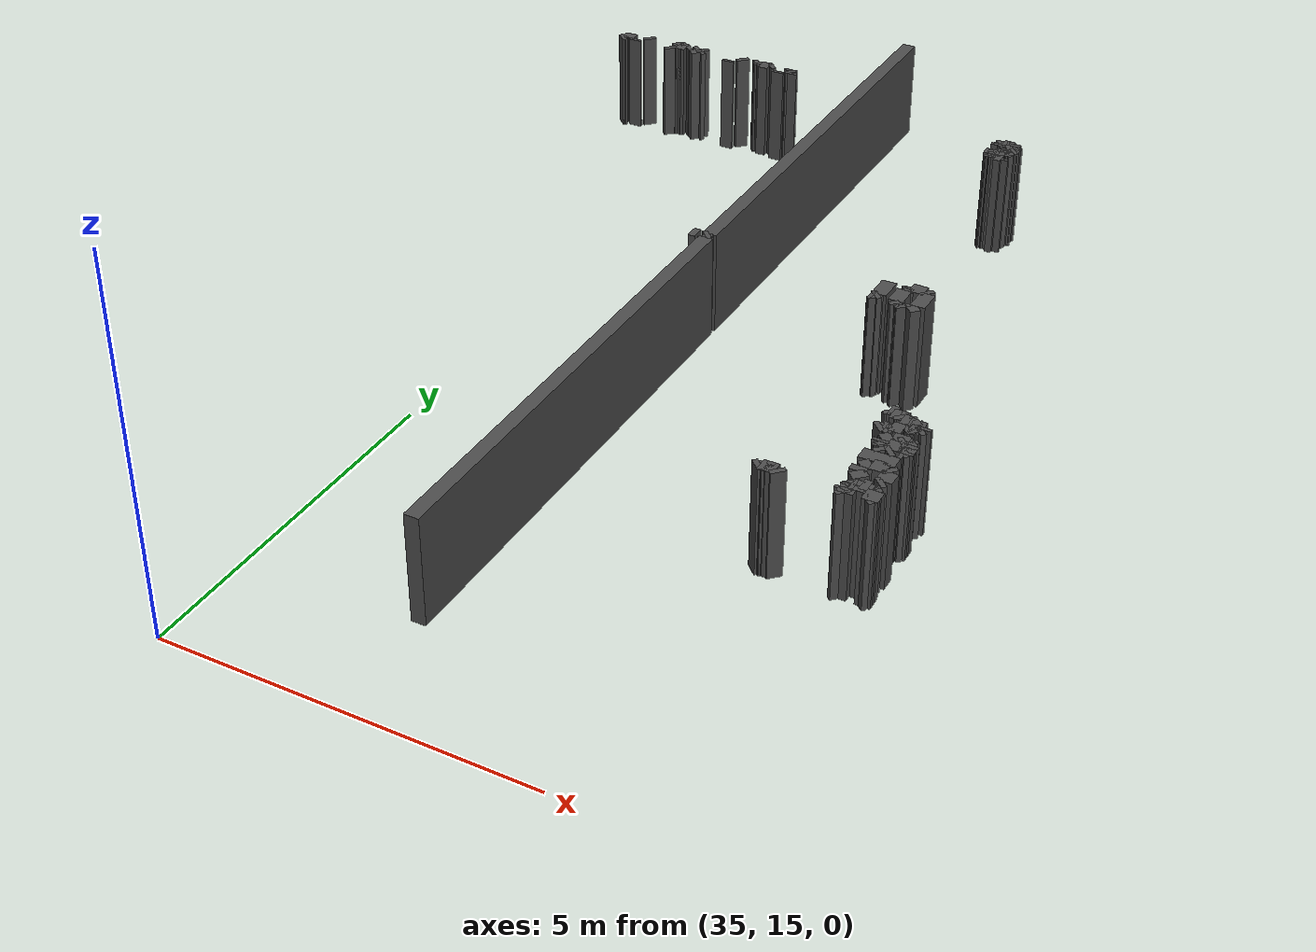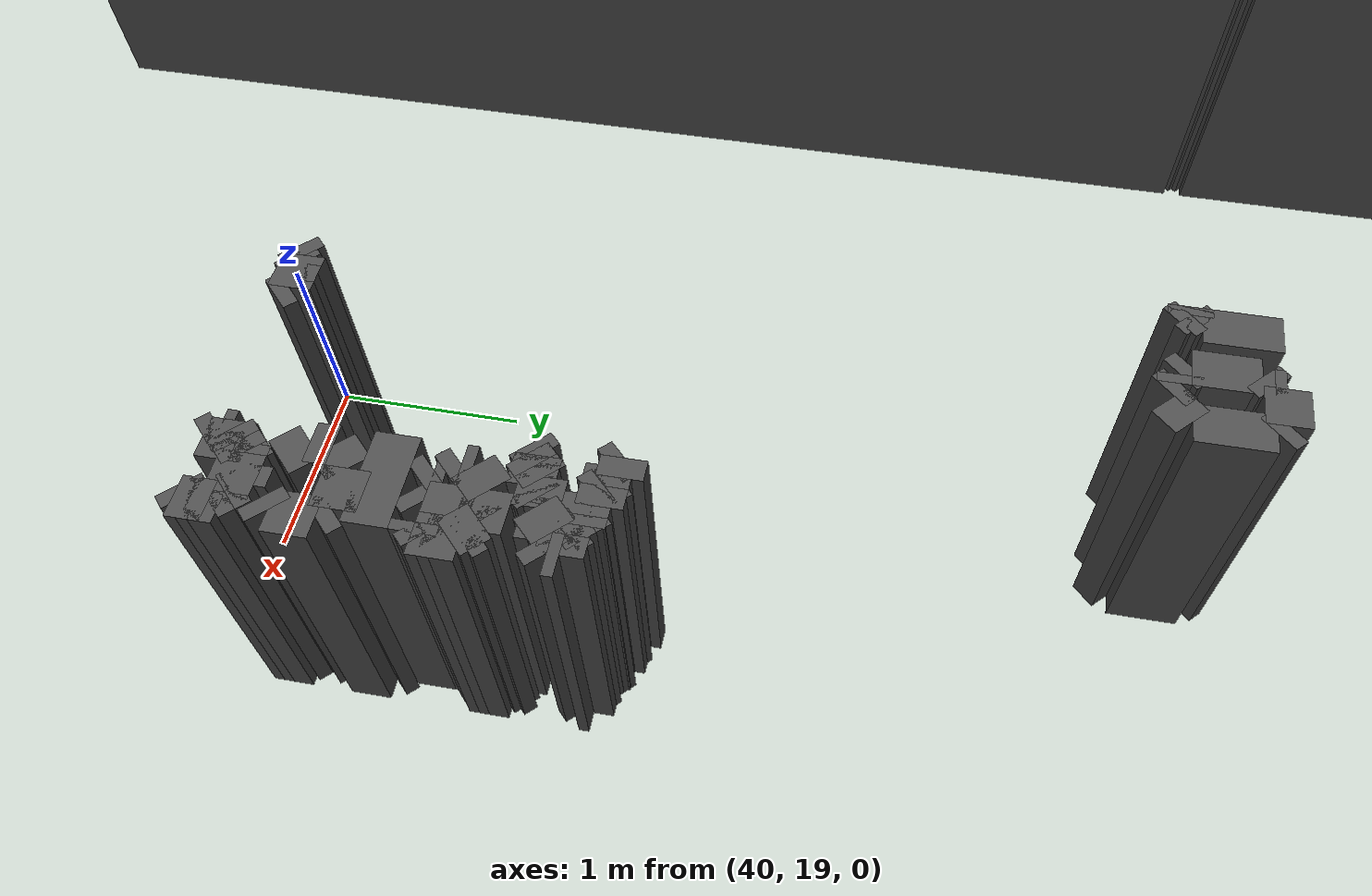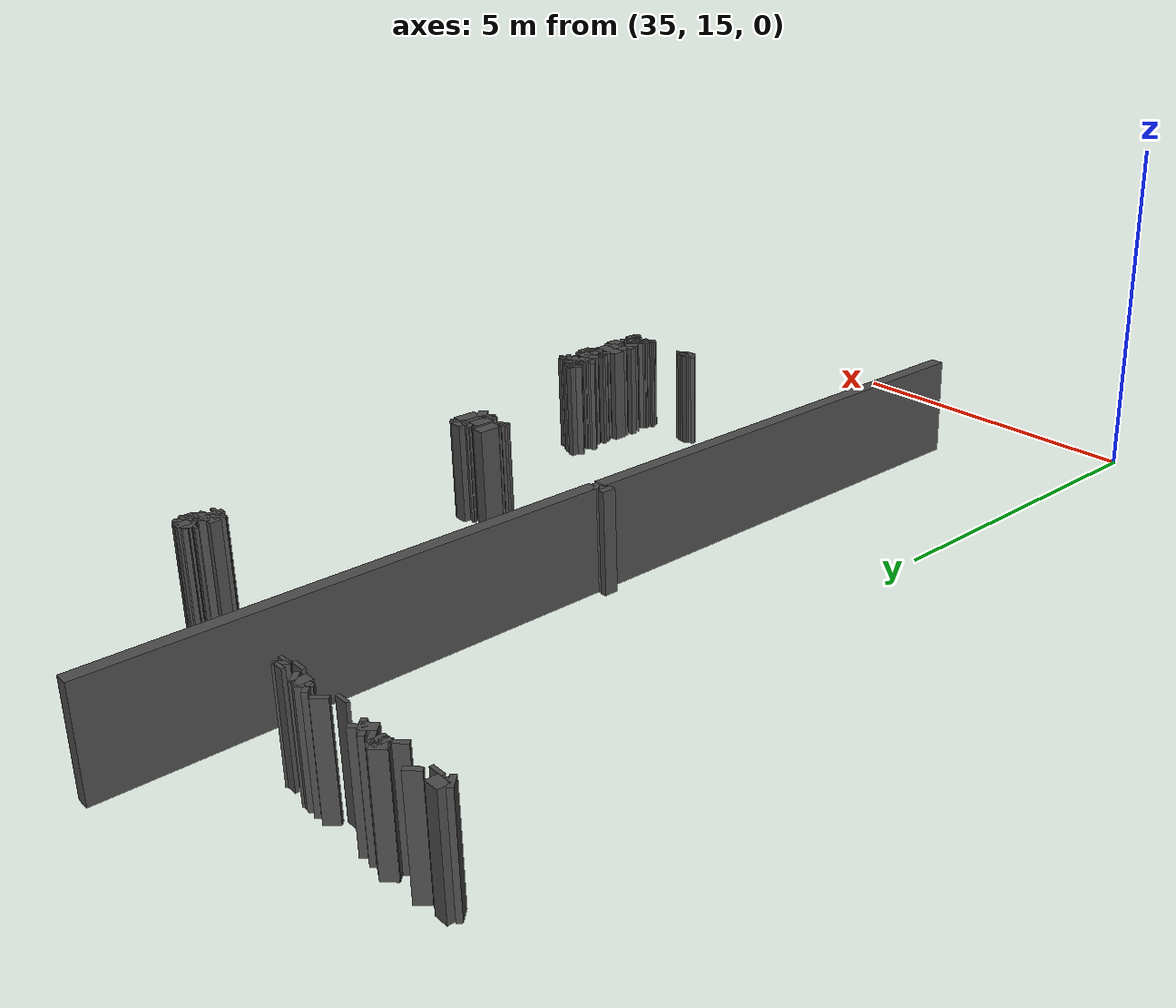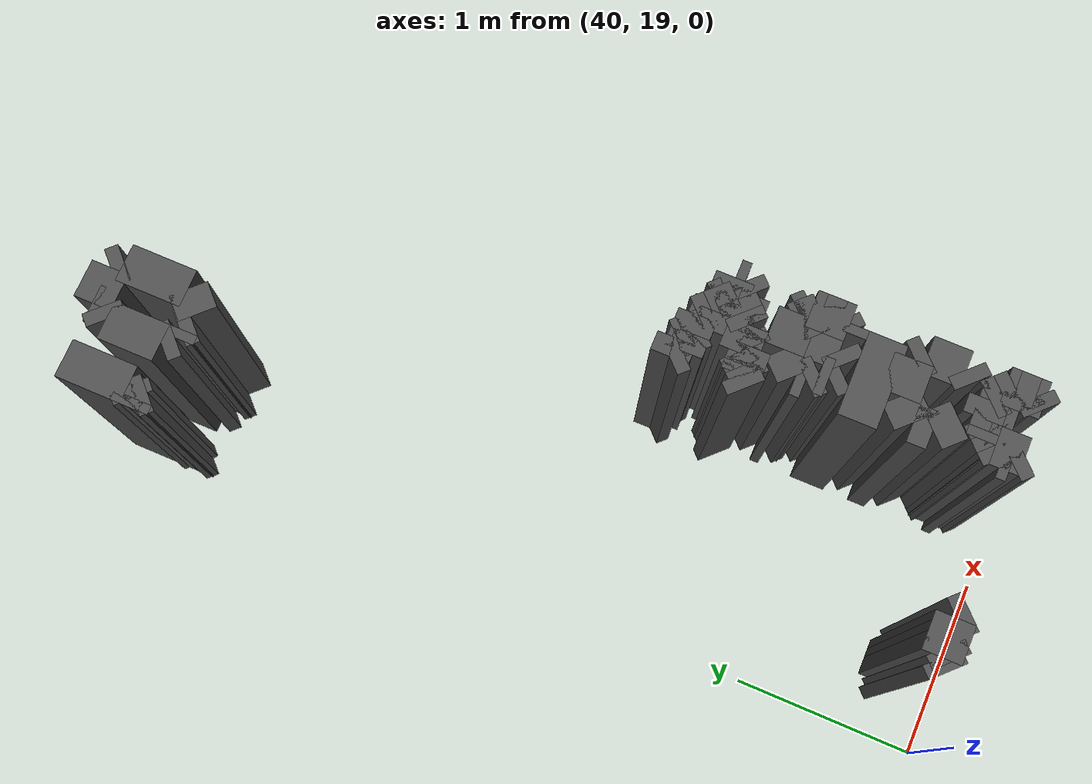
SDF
<sdf version="1.9">
 <model name="generated_walls">
  <static>true</static>
  <link name="wall_58_0">
   <pose>35.325 28.875 0.75 0 0 2.356</pose>
   <collision name="collision"><geometry><box><size>0.071 0.2 1.5</size></box></geometry></collision>
   <visual name="visual">
    <geometry><box><size>0.071 0.2 1.5</size></box></geometry>
    <material><ambient>0.3 0.3 0.3 1</ambient></material>
   </visual>
  </link>
  <link name="wall_58_14">
   <pose>35.825 28.875 0.75 0 0 -2.356</pose>
   <collision name="collision"><geometry><box><size>0.071 0.2 1.5</size></box></geometry></collision>
   <visual name="visual">
    <geometry><box><size>0.071 0.2 1.5</size></box></geometry>
    <material><ambient>0.3 0.3 0.3 1</ambient></material>
   </visual>
  </link>
  <link name="wall_58_15">
   <pose>35.725 28.850 0.75 0 0 3.142</pose>
   <collision name="collision"><geometry><box><size>0.150 0.2 1.5</size></box></geometry></collision>
   <visual name="visual">
    <geometry><box><size>0.150 0.2 1.5</size></box></geometry>
    <material><ambient>0.3 0.3 0.3 1</ambient></material>
   </visual>
  </link>
  <link name="wall_58_16">
   <pose>35.625 28.875 0.75 0 0 2.356</pose>
   <collision name="collision"><geometry><box><size>0.071 0.2 1.5</size></box></geometry></collision>
   <visual name="visual">
    <geometry><box><size>0.071 0.2 1.5</size></box></geometry>
    <material><ambient>0.3 0.3 0.3 1</ambient></material>
   </visual>
  </link>
  <link name="wall_58_17">
   <pose>35.575 28.875 0.75 0 0 -2.356</pose>
   <collision name="collision"><geometry><box><size>0.071 0.2 1.5</size></box></geometry></collision>
   <visual name="visual">
    <geometry><box><size>0.071 0.2 1.5</size></box></geometry>
    <material><ambient>0.3 0.3 0.3 1</ambient></material>
   </visual>
  </link>
  <link name="wall_60_0">
   <pose>33.675 28.875 0.75 0 0 2.356</pose>
   <collision name="collision"><geometry><box><size>0.071 0.2 1.5</size></box></geometry></collision>
   <visual name="visual">
    <geometry><box><size>0.071 0.2 1.5</size></box></geometry>
    <material><ambient>0.3 0.3 0.3 1</ambient></material>
   </visual>
  </link>
  <link name="wall_62_0">
   <pose>36.200 28.775 0.75 0 0 1.571</pose>
   <collision name="collision"><geometry><box><size>0.050 0.2 1.5</size></box></geometry></collision>
   <visual name="visual">
    <geometry><box><size>0.050 0.2 1.5</size></box></geometry>
    <material><ambient>0.3 0.3 0.3 1</ambient></material>
   </visual>
  </link>
  <link name="wall_62_1">
   <pose>36.175 28.825 0.75 0 0 2.356</pose>
   <collision name="collision"><geometry><box><size>0.071 0.2 1.5</size></box></geometry></collision>
   <visual name="visual">
    <geometry><box><size>0.071 0.2 1.5</size></box></geometry>
    <material><ambient>0.3 0.3 0.3 1</ambient></material>
   </visual>
  </link>
  <link name="wall_62_2">
   <pose>36.150 28.875 0.75 0 0 1.571</pose>
   <collision name="collision"><geometry><box><size>0.050 0.2 1.5</size></box></geometry></collision>
   <visual name="visual">
    <geometry><box><size>0.050 0.2 1.5</size></box></geometry>
    <material><ambient>0.3 0.3 0.3 1</ambient></material>
   </visual>
  </link>
  <link name="wall_63_0">
   <pose>34.550 28.800 0.75 0 0 2.356</pose>
   <collision name="collision"><geometry><box><size>0.141 0.2 1.5</size></box></geometry></collision>
   <visual name="visual">
    <geometry><box><size>0.141 0.2 1.5</size></box></geometry>
    <material><ambient>0.3 0.3 0.3 1</ambient></material>
   </visual>
  </link>
  <link name="wall_63_1">
   <pose>34.525 28.875 0.75 0 0 0.785</pose>
   <collision name="collision"><geometry><box><size>0.071 0.2 1.5</size></box></geometry></collision>
   <visual name="visual">
    <geometry><box><size>0.071 0.2 1.5</size></box></geometry>
    <material><ambient>0.3 0.3 0.3 1</ambient></material>
   </visual>
  </link>
  <link name="wall_63_7">
   <pose>34.625 28.875 0.75 0 0 -0.785</pose>
   <collision name="collision"><geometry><box><size>0.071 0.2 1.5</size></box></geometry></collision>
   <visual name="visual">
    <geometry><box><size>0.071 0.2 1.5</size></box></geometry>
    <material><ambient>0.3 0.3 0.3 1</ambient></material>
   </visual>
  </link>
  <link name="wall_63_8">
   <pose>34.625 28.825 0.75 0 0 -2.356</pose>
   <collision name="collision"><geometry><box><size>0.071 0.2 1.5</size></box></geometry></collision>
   <visual name="visual">
    <geometry><box><size>0.071 0.2 1.5</size></box></geometry>
    <material><ambient>0.3 0.3 0.3 1</ambient></material>
   </visual>
  </link>
  <link name="wall_64_0">
   <pose>36.000 28.725 0.75 0 0 1.571</pose>
   <collision name="collision"><geometry><box><size>0.050 0.2 1.5</size></box></geometry></collision>
   <visual name="visual">
    <geometry><box><size>0.050 0.2 1.5</size></box></geometry>
    <material><ambient>0.3 0.3 0.3 1</ambient></material>
   </visual>
  </link>
  <link name="wall_65_0">
   <pose>35.150 28.725 0.75 0 0 1.571</pose>
   <collision name="collision"><geometry><box><size>0.050 0.2 1.5</size></box></geometry></collision>
   <visual name="visual">
    <geometry><box><size>0.050 0.2 1.5</size></box></geometry>
    <material><ambient>0.3 0.3 0.3 1</ambient></material>
   </visual>
  </link>
  <link name="wall_67_0">
   <pose>34.125 28.725 0.75 0 0 2.356</pose>
   <collision name="collision"><geometry><box><size>0.071 0.2 1.5</size></box></geometry></collision>
   <visual name="visual">
    <geometry><box><size>0.071 0.2 1.5</size></box></geometry>
    <material><ambient>0.3 0.3 0.3 1</ambient></material>
   </visual>
  </link>
  <link name="wall_67_4">
   <pose>34.200 28.900 0.75 0 0 -0.785</pose>
   <collision name="collision"><geometry><box><size>0.141 0.2 1.5</size></box></geometry></collision>
   <visual name="visual">
    <geometry><box><size>0.141 0.2 1.5</size></box></geometry>
    <material><ambient>0.3 0.3 0.3 1</ambient></material>
   </visual>
  </link>
  <link name="wall_67_5">
   <pose>34.275 28.850 0.75 0 0 0.000</pose>
   <collision name="collision"><geometry><box><size>0.050 0.2 1.5</size></box></geometry></collision>
   <visual name="visual">
    <geometry><box><size>0.050 0.2 1.5</size></box></geometry>
    <material><ambient>0.3 0.3 0.3 1</ambient></material>
   </visual>
  </link>
  <link name="wall_67_9">
   <pose>34.375 28.875 0.75 0 0 -2.356</pose>
   <collision name="collision"><geometry><box><size>0.071 0.2 1.5</size></box></geometry></collision>
   <visual name="visual">
    <geometry><box><size>0.071 0.2 1.5</size></box></geometry>
    <material><ambient>0.3 0.3 0.3 1</ambient></material>
   </visual>
  </link>
  <link name="wall_67_10">
   <pose>34.275 28.850 0.75 0 0 3.142</pose>
   <collision name="collision"><geometry><box><size>0.150 0.2 1.5</size></box></geometry></collision>
   <visual name="visual">
    <geometry><box><size>0.150 0.2 1.5</size></box></geometry>
    <material><ambient>0.3 0.3 0.3 1</ambient></material>
   </visual>
  </link>
  <link name="wall_67_11">
   <pose>34.175 28.825 0.75 0 0 -2.356</pose>
   <collision name="collision"><geometry><box><size>0.071 0.2 1.5</size></box></geometry></collision>
   <visual name="visual">
    <geometry><box><size>0.071 0.2 1.5</size></box></geometry>
    <material><ambient>0.3 0.3 0.3 1</ambient></material>
   </visual>
  </link>
  <link name="wall_68_0">
   <pose>33.500 28.725 0.75 0 0 1.571</pose>
   <collision name="collision"><geometry><box><size>0.050 0.2 1.5</size></box></geometry></collision>
   <visual name="visual">
    <geometry><box><size>0.050 0.2 1.5</size></box></geometry>
    <material><ambient>0.3 0.3 0.3 1</ambient></material>
   </visual>
  </link>
  <link name="wall_69_12">
   <pose>33.350 28.825 0.75 0 0 -1.571</pose>
   <collision name="collision"><geometry><box><size>0.150 0.2 1.5</size></box></geometry></collision>
   <visual name="visual">
    <geometry><box><size>0.150 0.2 1.5</size></box></geometry>
    <material><ambient>0.3 0.3 0.3 1</ambient></material>
   </visual>
  </link>
  <link name="wall_69_13">
   <pose>33.325 28.750 0.75 0 0 3.142</pose>
   <collision name="collision"><geometry><box><size>0.050 0.2 1.5</size></box></geometry></collision>
   <visual name="visual">
    <geometry><box><size>0.050 0.2 1.5</size></box></geometry>
    <material><ambient>0.3 0.3 0.3 1</ambient></material>
   </visual>
  </link>
  <link name="wall_69_14">
   <pose>33.275 28.725 0.75 0 0 -2.356</pose>
   <collision name="collision"><geometry><box><size>0.071 0.2 1.5</size></box></geometry></collision>
   <visual name="visual">
    <geometry><box><size>0.071 0.2 1.5</size></box></geometry>
    <material><ambient>0.3 0.3 0.3 1</ambient></material>
   </visual>
  </link>
  <link name="wall_72_0">
   <pose>39.900 27.625 0.75 0 0 1.571</pose>
   <collision name="collision"><geometry><box><size>0.050 0.2 1.5</size></box></geometry></collision>
   <visual name="visual">
    <geometry><box><size>0.050 0.2 1.5</size></box></geometry>
    <material><ambient>0.3 0.3 0.3 1</ambient></material>
   </visual>
  </link>
  <link name="wall_72_1">
   <pose>39.875 27.675 0.75 0 0 2.356</pose>
   <collision name="collision"><geometry><box><size>0.071 0.2 1.5</size></box></geometry></collision>
   <visual name="visual">
    <geometry><box><size>0.071 0.2 1.5</size></box></geometry>
    <material><ambient>0.3 0.3 0.3 1</ambient></material>
   </visual>
  </link>
  <link name="wall_72_2">
   <pose>39.850 27.775 0.75 0 0 1.571</pose>
   <collision name="collision"><geometry><box><size>0.150 0.2 1.5</size></box></geometry></collision>
   <visual name="visual">
    <geometry><box><size>0.150 0.2 1.5</size></box></geometry>
    <material><ambient>0.3 0.3 0.3 1</ambient></material>
   </visual>
  </link>
  <link name="wall_72_3">
   <pose>39.875 27.825 0.75 0 0 -0.785</pose>
   <collision name="collision"><geometry><box><size>0.071 0.2 1.5</size></box></geometry></collision>
   <visual name="visual">
    <geometry><box><size>0.071 0.2 1.5</size></box></geometry>
    <material><ambient>0.3 0.3 0.3 1</ambient></material>
   </visual>
  </link>
  <link name="wall_72_4">
   <pose>39.950 27.800 0.75 0 0 0.000</pose>
   <collision name="collision"><geometry><box><size>0.100 0.2 1.5</size></box></geometry></collision>
   <visual name="visual">
    <geometry><box><size>0.100 0.2 1.5</size></box></geometry>
    <material><ambient>0.3 0.3 0.3 1</ambient></material>
   </visual>
  </link>
  <link name="wall_72_5">
   <pose>40.050 27.850 0.75 0 0 0.785</pose>
   <collision name="collision"><geometry><box><size>0.141 0.2 1.5</size></box></geometry></collision>
   <visual name="visual">
    <geometry><box><size>0.141 0.2 1.5</size></box></geometry>
    <material><ambient>0.3 0.3 0.3 1</ambient></material>
   </visual>
  </link>
  <link name="wall_72_6">
   <pose>40.100 27.950 0.75 0 0 1.571</pose>
   <collision name="collision"><geometry><box><size>0.100 0.2 1.5</size></box></geometry></collision>
   <visual name="visual">
    <geometry><box><size>0.100 0.2 1.5</size></box></geometry>
    <material><ambient>0.3 0.3 0.3 1</ambient></material>
   </visual>
  </link>
  <link name="wall_72_7">
   <pose>40.050 28.050 0.75 0 0 2.356</pose>
   <collision name="collision"><geometry><box><size>0.141 0.2 1.5</size></box></geometry></collision>
   <visual name="visual">
    <geometry><box><size>0.141 0.2 1.5</size></box></geometry>
    <material><ambient>0.3 0.3 0.3 1</ambient></material>
   </visual>
  </link>
  <link name="wall_72_8">
   <pose>39.975 28.100 0.75 0 0 3.142</pose>
   <collision name="collision"><geometry><box><size>0.050 0.2 1.5</size></box></geometry></collision>
   <visual name="visual">
    <geometry><box><size>0.050 0.2 1.5</size></box></geometry>
    <material><ambient>0.3 0.3 0.3 1</ambient></material>
   </visual>
  </link>
  <link name="wall_72_9">
   <pose>39.900 28.050 0.75 0 0 -2.356</pose>
   <collision name="collision"><geometry><box><size>0.141 0.2 1.5</size></box></geometry></collision>
   <visual name="visual">
    <geometry><box><size>0.141 0.2 1.5</size></box></geometry>
    <material><ambient>0.3 0.3 0.3 1</ambient></material>
   </visual>
  </link>
  <link name="wall_72_10">
   <pose>39.850 28.025 0.75 0 0 1.571</pose>
   <collision name="collision"><geometry><box><size>0.050 0.2 1.5</size></box></geometry></collision>
   <visual name="visual">
    <geometry><box><size>0.050 0.2 1.5</size></box></geometry>
    <material><ambient>0.3 0.3 0.3 1</ambient></material>
   </visual>
  </link>
  <link name="wall_72_11">
   <pose>39.875 28.075 0.75 0 0 0.785</pose>
   <collision name="collision"><geometry><box><size>0.071 0.2 1.5</size></box></geometry></collision>
   <visual name="visual">
    <geometry><box><size>0.071 0.2 1.5</size></box></geometry>
    <material><ambient>0.3 0.3 0.3 1</ambient></material>
   </visual>
  </link>
  <link name="wall_72_12">
   <pose>39.975 28.100 0.75 0 0 0.000</pose>
   <collision name="collision"><geometry><box><size>0.150 0.2 1.5</size></box></geometry></collision>
   <visual name="visual">
    <geometry><box><size>0.150 0.2 1.5</size></box></geometry>
    <material><ambient>0.3 0.3 0.3 1</ambient></material>
   </visual>
  </link>
  <link name="wall_72_13">
   <pose>40.075 28.075 0.75 0 0 -0.785</pose>
   <collision name="collision"><geometry><box><size>0.071 0.2 1.5</size></box></geometry></collision>
   <visual name="visual">
    <geometry><box><size>0.071 0.2 1.5</size></box></geometry>
    <material><ambient>0.3 0.3 0.3 1</ambient></material>
   </visual>
  </link>
  <link name="wall_72_14">
   <pose>40.100 28.025 0.75 0 0 -1.571</pose>
   <collision name="collision"><geometry><box><size>0.050 0.2 1.5</size></box></geometry></collision>
   <visual name="visual">
    <geometry><box><size>0.050 0.2 1.5</size></box></geometry>
    <material><ambient>0.3 0.3 0.3 1</ambient></material>
   </visual>
  </link>
  <link name="wall_72_15">
   <pose>40.125 27.975 0.75 0 0 -0.785</pose>
   <collision name="collision"><geometry><box><size>0.071 0.2 1.5</size></box></geometry></collision>
   <visual name="visual">
    <geometry><box><size>0.071 0.2 1.5</size></box></geometry>
    <material><ambient>0.3 0.3 0.3 1</ambient></material>
   </visual>
  </link>
  <link name="wall_72_16">
   <pose>40.125 27.925 0.75 0 0 -2.356</pose>
   <collision name="collision"><geometry><box><size>0.071 0.2 1.5</size></box></geometry></collision>
   <visual name="visual">
    <geometry><box><size>0.071 0.2 1.5</size></box></geometry>
    <material><ambient>0.3 0.3 0.3 1</ambient></material>
   </visual>
  </link>
  <link name="wall_72_17">
   <pose>40.100 27.875 0.75 0 0 -1.571</pose>
   <collision name="collision"><geometry><box><size>0.050 0.2 1.5</size></box></geometry></collision>
   <visual name="visual">
    <geometry><box><size>0.050 0.2 1.5</size></box></geometry>
    <material><ambient>0.3 0.3 0.3 1</ambient></material>
   </visual>
  </link>
  <link name="wall_72_18">
   <pose>40.075 27.825 0.75 0 0 -2.356</pose>
   <collision name="collision"><geometry><box><size>0.071 0.2 1.5</size></box></geometry></collision>
   <visual name="visual">
    <geometry><box><size>0.071 0.2 1.5</size></box></geometry>
    <material><ambient>0.3 0.3 0.3 1</ambient></material>
   </visual>
  </link>
  <link name="wall_72_19">
   <pose>40.000 27.800 0.75 0 0 3.142</pose>
   <collision name="collision"><geometry><box><size>0.100 0.2 1.5</size></box></geometry></collision>
   <visual name="visual">
    <geometry><box><size>0.100 0.2 1.5</size></box></geometry>
    <material><ambient>0.3 0.3 0.3 1</ambient></material>
   </visual>
  </link>
  <link name="wall_72_20">
   <pose>39.925 27.775 0.75 0 0 -2.356</pose>
   <collision name="collision"><geometry><box><size>0.071 0.2 1.5</size></box></geometry></collision>
   <visual name="visual">
    <geometry><box><size>0.071 0.2 1.5</size></box></geometry>
    <material><ambient>0.3 0.3 0.3 1</ambient></material>
   </visual>
  </link>
  <link name="wall_72_21">
   <pose>39.900 27.725 0.75 0 0 -1.571</pose>
   <collision name="collision"><geometry><box><size>0.050 0.2 1.5</size></box></geometry></collision>
   <visual name="visual">
    <geometry><box><size>0.050 0.2 1.5</size></box></geometry>
    <material><ambient>0.3 0.3 0.3 1</ambient></material>
   </visual>
  </link>
  <link name="wall_72_22">
   <pose>39.925 27.675 0.75 0 0 -0.785</pose>
   <collision name="collision"><geometry><box><size>0.071 0.2 1.5</size></box></geometry></collision>
   <visual name="visual">
    <geometry><box><size>0.071 0.2 1.5</size></box></geometry>
    <material><ambient>0.3 0.3 0.3 1</ambient></material>
   </visual>
  </link>
  <link name="wall_72_23">
   <pose>40.000 27.650 0.75 0 0 0.000</pose>
   <collision name="collision"><geometry><box><size>0.100 0.2 1.5</size></box></geometry></collision>
   <visual name="visual">
    <geometry><box><size>0.100 0.2 1.5</size></box></geometry>
    <material><ambient>0.3 0.3 0.3 1</ambient></material>
   </visual>
  </link>
  <link name="wall_72_24">
   <pose>40.050 27.625 0.75 0 0 -1.571</pose>
   <collision name="collision"><geometry><box><size>0.050 0.2 1.5</size></box></geometry></collision>
   <visual name="visual">
    <geometry><box><size>0.050 0.2 1.5</size></box></geometry>
    <material><ambient>0.3 0.3 0.3 1</ambient></material>
   </visual>
  </link>
  <link name="wall_77_0">
   <pose>37.200 23.650 0.75 0 0 0.000</pose>
   <collision name="collision"><geometry><box><size>0.100 0.2 1.5</size></box></geometry></collision>
   <visual name="visual">
    <geometry><box><size>0.100 0.2 1.5</size></box></geometry>
    <material><ambient>0.3 0.3 0.3 1</ambient></material>
   </visual>
  </link>
  <link name="wall_81_0">
   <pose>39.975 23.275 0.75 0 0 2.356</pose>
   <collision name="collision"><geometry><box><size>0.071 0.2 1.5</size></box></geometry></collision>
   <visual name="visual">
    <geometry><box><size>0.071 0.2 1.5</size></box></geometry>
    <material><ambient>0.3 0.3 0.3 1</ambient></material>
   </visual>
  </link>
  <link name="wall_81_1">
   <pose>39.925 23.300 0.75 0 0 3.142</pose>
   <collision name="collision"><geometry><box><size>0.050 0.2 1.5</size></box></geometry></collision>
   <visual name="visual">
    <geometry><box><size>0.050 0.2 1.5</size></box></geometry>
    <material><ambient>0.3 0.3 0.3 1</ambient></material>
   </visual>
  </link>
  <link name="wall_81_2">
   <pose>39.925 23.300 0.75 0 0 0.000</pose>
   <collision name="collision"><geometry><box><size>0.050 0.2 1.5</size></box></geometry></collision>
   <visual name="visual">
    <geometry><box><size>0.050 0.2 1.5</size></box></geometry>
    <material><ambient>0.3 0.3 0.3 1</ambient></material>
   </visual>
  </link>
  <link name="wall_81_3">
   <pose>39.975 23.325 0.75 0 0 0.785</pose>
   <collision name="collision"><geometry><box><size>0.071 0.2 1.5</size></box></geometry></collision>
   <visual name="visual">
    <geometry><box><size>0.071 0.2 1.5</size></box></geometry>
    <material><ambient>0.3 0.3 0.3 1</ambient></material>
   </visual>
  </link>
  <link name="wall_81_4">
   <pose>40.000 23.525 0.75 0 0 1.571</pose>
   <collision name="collision"><geometry><box><size>0.350 0.2 1.5</size></box></geometry></collision>
   <visual name="visual">
    <geometry><box><size>0.350 0.2 1.5</size></box></geometry>
    <material><ambient>0.3 0.3 0.3 1</ambient></material>
   </visual>
  </link>
  <link name="wall_82_0">
   <pose>40.375 23.225 0.75 0 0 2.356</pose>
   <collision name="collision"><geometry><box><size>0.071 0.2 1.5</size></box></geometry></collision>
   <visual name="visual">
    <geometry><box><size>0.071 0.2 1.5</size></box></geometry>
    <material><ambient>0.3 0.3 0.3 1</ambient></material>
   </visual>
  </link>
  <link name="wall_82_1">
   <pose>40.325 23.250 0.75 0 0 3.142</pose>
   <collision name="collision"><geometry><box><size>0.050 0.2 1.5</size></box></geometry></collision>
   <visual name="visual">
    <geometry><box><size>0.050 0.2 1.5</size></box></geometry>
    <material><ambient>0.3 0.3 0.3 1</ambient></material>
   </visual>
  </link>
  <link name="wall_82_2">
   <pose>40.275 23.275 0.75 0 0 2.356</pose>
   <collision name="collision"><geometry><box><size>0.071 0.2 1.5</size></box></geometry></collision>
   <visual name="visual">
    <geometry><box><size>0.071 0.2 1.5</size></box></geometry>
    <material><ambient>0.3 0.3 0.3 1</ambient></material>
   </visual>
  </link>
  <link name="wall_82_3">
   <pose>40.250 23.450 0.75 0 0 1.571</pose>
   <collision name="collision"><geometry><box><size>0.300 0.2 1.5</size></box></geometry></collision>
   <visual name="visual">
    <geometry><box><size>0.300 0.2 1.5</size></box></geometry>
    <material><ambient>0.3 0.3 0.3 1</ambient></material>
   </visual>
  </link>
  <link name="wall_82_4">
   <pose>40.275 23.625 0.75 0 0 0.785</pose>
   <collision name="collision"><geometry><box><size>0.071 0.2 1.5</size></box></geometry></collision>
   <visual name="visual">
    <geometry><box><size>0.071 0.2 1.5</size></box></geometry>
    <material><ambient>0.3 0.3 0.3 1</ambient></material>
   </visual>
  </link>
  <link name="wall_82_5">
   <pose>40.300 23.675 0.75 0 0 1.571</pose>
   <collision name="collision"><geometry><box><size>0.050 0.2 1.5</size></box></geometry></collision>
   <visual name="visual">
    <geometry><box><size>0.050 0.2 1.5</size></box></geometry>
    <material><ambient>0.3 0.3 0.3 1</ambient></material>
   </visual>
  </link>
  <link name="wall_82_6">
   <pose>40.400 23.700 0.75 0 0 0.000</pose>
   <collision name="collision"><geometry><box><size>0.200 0.2 1.5</size></box></geometry></collision>
   <visual name="visual">
    <geometry><box><size>0.200 0.2 1.5</size></box></geometry>
    <material><ambient>0.3 0.3 0.3 1</ambient></material>
   </visual>
  </link>
  <link name="wall_82_7">
   <pose>40.525 23.675 0.75 0 0 -0.785</pose>
   <collision name="collision"><geometry><box><size>0.071 0.2 1.5</size></box></geometry></collision>
   <visual name="visual">
    <geometry><box><size>0.071 0.2 1.5</size></box></geometry>
    <material><ambient>0.3 0.3 0.3 1</ambient></material>
   </visual>
  </link>
  <link name="wall_82_8">
   <pose>40.550 23.475 0.75 0 0 -1.571</pose>
   <collision name="collision"><geometry><box><size>0.350 0.2 1.5</size></box></geometry></collision>
   <visual name="visual">
    <geometry><box><size>0.350 0.2 1.5</size></box></geometry>
    <material><ambient>0.3 0.3 0.3 1</ambient></material>
   </visual>
  </link>
  <link name="wall_82_9">
   <pose>40.500 23.250 0.75 0 0 -2.356</pose>
   <collision name="collision"><geometry><box><size>0.141 0.2 1.5</size></box></geometry></collision>
   <visual name="visual">
    <geometry><box><size>0.141 0.2 1.5</size></box></geometry>
    <material><ambient>0.3 0.3 0.3 1</ambient></material>
   </visual>
  </link>
  <link name="wall_88_0">
   <pose>41.175 20.625 0.75 0 0 0.785</pose>
   <collision name="collision"><geometry><box><size>0.071 0.2 1.5</size></box></geometry></collision>
   <visual name="visual">
    <geometry><box><size>0.071 0.2 1.5</size></box></geometry>
    <material><ambient>0.3 0.3 0.3 1</ambient></material>
   </visual>
  </link>
  <link name="wall_88_1">
   <pose>41.225 20.650 0.75 0 0 0.000</pose>
   <collision name="collision"><geometry><box><size>0.050 0.2 1.5</size></box></geometry></collision>
   <visual name="visual">
    <geometry><box><size>0.050 0.2 1.5</size></box></geometry>
    <material><ambient>0.3 0.3 0.3 1</ambient></material>
   </visual>
  </link>
  <link name="wall_88_2">
   <pose>41.275 20.675 0.75 0 0 0.785</pose>
   <collision name="collision"><geometry><box><size>0.071 0.2 1.5</size></box></geometry></collision>
   <visual name="visual">
    <geometry><box><size>0.071 0.2 1.5</size></box></geometry>
    <material><ambient>0.3 0.3 0.3 1</ambient></material>
   </visual>
  </link>
  <link name="wall_88_3">
   <pose>41.375 20.700 0.75 0 0 0.000</pose>
   <collision name="collision"><geometry><box><size>0.150 0.2 1.5</size></box></geometry></collision>
   <visual name="visual">
    <geometry><box><size>0.150 0.2 1.5</size></box></geometry>
    <material><ambient>0.3 0.3 0.3 1</ambient></material>
   </visual>
  </link>
  <link name="wall_88_4">
   <pose>41.500 20.750 0.75 0 0 0.785</pose>
   <collision name="collision"><geometry><box><size>0.141 0.2 1.5</size></box></geometry></collision>
   <visual name="visual">
    <geometry><box><size>0.141 0.2 1.5</size></box></geometry>
    <material><ambient>0.3 0.3 0.3 1</ambient></material>
   </visual>
  </link>
  <link name="wall_88_5">
   <pose>41.500 20.850 0.75 0 0 2.356</pose>
   <collision name="collision"><geometry><box><size>0.141 0.2 1.5</size></box></geometry></collision>
   <visual name="visual">
    <geometry><box><size>0.141 0.2 1.5</size></box></geometry>
    <material><ambient>0.3 0.3 0.3 1</ambient></material>
   </visual>
  </link>
  <link name="wall_88_6">
   <pose>41.400 20.900 0.75 0 0 3.142</pose>
   <collision name="collision"><geometry><box><size>0.100 0.2 1.5</size></box></geometry></collision>
   <visual name="visual">
    <geometry><box><size>0.100 0.2 1.5</size></box></geometry>
    <material><ambient>0.3 0.3 0.3 1</ambient></material>
   </visual>
  </link>
  <link name="wall_88_7">
   <pose>41.325 20.925 0.75 0 0 2.356</pose>
   <collision name="collision"><geometry><box><size>0.071 0.2 1.5</size></box></geometry></collision>
   <visual name="visual">
    <geometry><box><size>0.071 0.2 1.5</size></box></geometry>
    <material><ambient>0.3 0.3 0.3 1</ambient></material>
   </visual>
  </link>
  <link name="wall_88_8">
   <pose>41.250 20.950 0.75 0 0 3.142</pose>
   <collision name="collision"><geometry><box><size>0.100 0.2 1.5</size></box></geometry></collision>
   <visual name="visual">
    <geometry><box><size>0.100 0.2 1.5</size></box></geometry>
    <material><ambient>0.3 0.3 0.3 1</ambient></material>
   </visual>
  </link>
  <link name="wall_88_9">
   <pose>41.175 20.975 0.75 0 0 2.356</pose>
   <collision name="collision"><geometry><box><size>0.071 0.2 1.5</size></box></geometry></collision>
   <visual name="visual">
    <geometry><box><size>0.071 0.2 1.5</size></box></geometry>
    <material><ambient>0.3 0.3 0.3 1</ambient></material>
   </visual>
  </link>
  <link name="wall_88_10">
   <pose>41.200 21.000 0.75 0 0 0.000</pose>
   <collision name="collision"><geometry><box><size>0.100 0.2 1.5</size></box></geometry></collision>
   <visual name="visual">
    <geometry><box><size>0.100 0.2 1.5</size></box></geometry>
    <material><ambient>0.3 0.3 0.3 1</ambient></material>
   </visual>
  </link>
  <link name="wall_88_11">
   <pose>41.275 20.975 0.75 0 0 -0.785</pose>
   <collision name="collision"><geometry><box><size>0.071 0.2 1.5</size></box></geometry></collision>
   <visual name="visual">
    <geometry><box><size>0.071 0.2 1.5</size></box></geometry>
    <material><ambient>0.3 0.3 0.3 1</ambient></material>
   </visual>
  </link>
  <link name="wall_88_12">
   <pose>41.350 20.950 0.75 0 0 0.000</pose>
   <collision name="collision"><geometry><box><size>0.100 0.2 1.5</size></box></geometry></collision>
   <visual name="visual">
    <geometry><box><size>0.100 0.2 1.5</size></box></geometry>
    <material><ambient>0.3 0.3 0.3 1</ambient></material>
   </visual>
  </link>
  <link name="wall_88_13">
   <pose>41.425 20.925 0.75 0 0 -0.785</pose>
   <collision name="collision"><geometry><box><size>0.071 0.2 1.5</size></box></geometry></collision>
   <visual name="visual">
    <geometry><box><size>0.071 0.2 1.5</size></box></geometry>
    <material><ambient>0.3 0.3 0.3 1</ambient></material>
   </visual>
  </link>
  <link name="wall_88_14">
   <pose>41.475 20.900 0.75 0 0 0.000</pose>
   <collision name="collision"><geometry><box><size>0.050 0.2 1.5</size></box></geometry></collision>
   <visual name="visual">
    <geometry><box><size>0.050 0.2 1.5</size></box></geometry>
    <material><ambient>0.3 0.3 0.3 1</ambient></material>
   </visual>
  </link>
  <link name="wall_88_15">
   <pose>41.525 20.875 0.75 0 0 -0.785</pose>
   <collision name="collision"><geometry><box><size>0.071 0.2 1.5</size></box></geometry></collision>
   <visual name="visual">
    <geometry><box><size>0.071 0.2 1.5</size></box></geometry>
    <material><ambient>0.3 0.3 0.3 1</ambient></material>
   </visual>
  </link>
  <link name="wall_88_16">
   <pose>41.600 20.850 0.75 0 0 0.000</pose>
   <collision name="collision"><geometry><box><size>0.100 0.2 1.5</size></box></geometry></collision>
   <visual name="visual">
    <geometry><box><size>0.100 0.2 1.5</size></box></geometry>
    <material><ambient>0.3 0.3 0.3 1</ambient></material>
   </visual>
  </link>
  <link name="wall_88_17">
   <pose>41.650 20.825 0.75 0 0 -1.571</pose>
   <collision name="collision"><geometry><box><size>0.050 0.2 1.5</size></box></geometry></collision>
   <visual name="visual">
    <geometry><box><size>0.050 0.2 1.5</size></box></geometry>
    <material><ambient>0.3 0.3 0.3 1</ambient></material>
   </visual>
  </link>
  <link name="wall_88_18">
   <pose>41.625 20.775 0.75 0 0 -2.356</pose>
   <collision name="collision"><geometry><box><size>0.071 0.2 1.5</size></box></geometry></collision>
   <visual name="visual">
    <geometry><box><size>0.071 0.2 1.5</size></box></geometry>
    <material><ambient>0.3 0.3 0.3 1</ambient></material>
   </visual>
  </link>
  <link name="wall_88_19">
   <pose>41.550 20.750 0.75 0 0 3.142</pose>
   <collision name="collision"><geometry><box><size>0.100 0.2 1.5</size></box></geometry></collision>
   <visual name="visual">
    <geometry><box><size>0.100 0.2 1.5</size></box></geometry>
    <material><ambient>0.3 0.3 0.3 1</ambient></material>
   </visual>
  </link>
  <link name="wall_88_20">
   <pose>41.475 20.725 0.75 0 0 -2.356</pose>
   <collision name="collision"><geometry><box><size>0.071 0.2 1.5</size></box></geometry></collision>
   <visual name="visual">
    <geometry><box><size>0.071 0.2 1.5</size></box></geometry>
    <material><ambient>0.3 0.3 0.3 1</ambient></material>
   </visual>
  </link>
  <link name="wall_88_21">
   <pose>41.425 20.700 0.75 0 0 3.142</pose>
   <collision name="collision"><geometry><box><size>0.050 0.2 1.5</size></box></geometry></collision>
   <visual name="visual">
    <geometry><box><size>0.050 0.2 1.5</size></box></geometry>
    <material><ambient>0.3 0.3 0.3 1</ambient></material>
   </visual>
  </link>
  <link name="wall_88_22">
   <pose>41.375 20.675 0.75 0 0 -2.356</pose>
   <collision name="collision"><geometry><box><size>0.071 0.2 1.5</size></box></geometry></collision>
   <visual name="visual">
    <geometry><box><size>0.071 0.2 1.5</size></box></geometry>
    <material><ambient>0.3 0.3 0.3 1</ambient></material>
   </visual>
  </link>
  <link name="wall_88_23">
   <pose>41.300 20.650 0.75 0 0 3.142</pose>
   <collision name="collision"><geometry><box><size>0.100 0.2 1.5</size></box></geometry></collision>
   <visual name="visual">
    <geometry><box><size>0.100 0.2 1.5</size></box></geometry>
    <material><ambient>0.3 0.3 0.3 1</ambient></material>
   </visual>
  </link>
  <link name="wall_88_24">
   <pose>41.225 20.625 0.75 0 0 -2.356</pose>
   <collision name="collision"><geometry><box><size>0.071 0.2 1.5</size></box></geometry></collision>
   <visual name="visual">
    <geometry><box><size>0.071 0.2 1.5</size></box></geometry>
    <material><ambient>0.3 0.3 0.3 1</ambient></material>
   </visual>
  </link>
  <link name="wall_91_0">
   <pose>41.375 20.225 0.75 0 0 2.356</pose>
   <collision name="collision"><geometry><box><size>0.071 0.2 1.5</size></box></geometry></collision>
   <visual name="visual">
    <geometry><box><size>0.071 0.2 1.5</size></box></geometry>
    <material><ambient>0.3 0.3 0.3 1</ambient></material>
   </visual>
  </link>
  <link name="wall_91_1">
   <pose>41.350 20.275 0.75 0 0 1.571</pose>
   <collision name="collision"><geometry><box><size>0.050 0.2 1.5</size></box></geometry></collision>
   <visual name="visual">
    <geometry><box><size>0.050 0.2 1.5</size></box></geometry>
    <material><ambient>0.3 0.3 0.3 1</ambient></material>
   </visual>
  </link>
  <link name="wall_91_2">
   <pose>41.325 20.325 0.75 0 0 2.356</pose>
   <collision name="collision"><geometry><box><size>0.071 0.2 1.5</size></box></geometry></collision>
   <visual name="visual">
    <geometry><box><size>0.071 0.2 1.5</size></box></geometry>
    <material><ambient>0.3 0.3 0.3 1</ambient></material>
   </visual>
  </link>
  <link name="wall_91_3">
   <pose>41.300 20.375 0.75 0 0 1.571</pose>
   <collision name="collision"><geometry><box><size>0.050 0.2 1.5</size></box></geometry></collision>
   <visual name="visual">
    <geometry><box><size>0.050 0.2 1.5</size></box></geometry>
    <material><ambient>0.3 0.3 0.3 1</ambient></material>
   </visual>
  </link>
  <link name="wall_91_4">
   <pose>41.350 20.450 0.75 0 0 0.785</pose>
   <collision name="collision"><geometry><box><size>0.141 0.2 1.5</size></box></geometry></collision>
   <visual name="visual">
    <geometry><box><size>0.141 0.2 1.5</size></box></geometry>
    <material><ambient>0.3 0.3 0.3 1</ambient></material>
   </visual>
  </link>
  <link name="wall_91_5">
   <pose>41.500 20.500 0.75 0 0 0.000</pose>
   <collision name="collision"><geometry><box><size>0.200 0.2 1.5</size></box></geometry></collision>
   <visual name="visual">
    <geometry><box><size>0.200 0.2 1.5</size></box></geometry>
    <material><ambient>0.3 0.3 0.3 1</ambient></material>
   </visual>
  </link>
  <link name="wall_91_6">
   <pose>41.625 20.475 0.75 0 0 -0.785</pose>
   <collision name="collision"><geometry><box><size>0.071 0.2 1.5</size></box></geometry></collision>
   <visual name="visual">
    <geometry><box><size>0.071 0.2 1.5</size></box></geometry>
    <material><ambient>0.3 0.3 0.3 1</ambient></material>
   </visual>
  </link>
  <link name="wall_91_7">
   <pose>41.650 20.350 0.75 0 0 -1.571</pose>
   <collision name="collision"><geometry><box><size>0.200 0.2 1.5</size></box></geometry></collision>
   <visual name="visual">
    <geometry><box><size>0.200 0.2 1.5</size></box></geometry>
    <material><ambient>0.3 0.3 0.3 1</ambient></material>
   </visual>
  </link>
  <link name="wall_91_8">
   <pose>41.625 20.250 0.75 0 0 3.142</pose>
   <collision name="collision"><geometry><box><size>0.050 0.2 1.5</size></box></geometry></collision>
   <visual name="visual">
    <geometry><box><size>0.050 0.2 1.5</size></box></geometry>
    <material><ambient>0.3 0.3 0.3 1</ambient></material>
   </visual>
  </link>
  <link name="wall_91_9">
   <pose>41.625 20.275 0.75 0 0 0.785</pose>
   <collision name="collision"><geometry><box><size>0.071 0.2 1.5</size></box></geometry></collision>
   <visual name="visual">
    <geometry><box><size>0.071 0.2 1.5</size></box></geometry>
    <material><ambient>0.3 0.3 0.3 1</ambient></material>
   </visual>
  </link>
  <link name="wall_91_10">
   <pose>41.650 20.350 0.75 0 0 1.571</pose>
   <collision name="collision"><geometry><box><size>0.100 0.2 1.5</size></box></geometry></collision>
   <visual name="visual">
    <geometry><box><size>0.100 0.2 1.5</size></box></geometry>
    <material><ambient>0.3 0.3 0.3 1</ambient></material>
   </visual>
  </link>
  <link name="wall_91_11">
   <pose>41.600 20.450 0.75 0 0 2.356</pose>
   <collision name="collision"><geometry><box><size>0.141 0.2 1.5</size></box></geometry></collision>
   <visual name="visual">
    <geometry><box><size>0.141 0.2 1.5</size></box></geometry>
    <material><ambient>0.3 0.3 0.3 1</ambient></material>
   </visual>
  </link>
  <link name="wall_91_12">
   <pose>41.525 20.475 0.75 0 0 -2.356</pose>
   <collision name="collision"><geometry><box><size>0.071 0.2 1.5</size></box></geometry></collision>
   <visual name="visual">
    <geometry><box><size>0.071 0.2 1.5</size></box></geometry>
    <material><ambient>0.3 0.3 0.3 1</ambient></material>
   </visual>
  </link>
  <link name="wall_91_13">
   <pose>41.500 20.350 0.75 0 0 -1.571</pose>
   <collision name="collision"><geometry><box><size>0.200 0.2 1.5</size></box></geometry></collision>
   <visual name="visual">
    <geometry><box><size>0.200 0.2 1.5</size></box></geometry>
    <material><ambient>0.3 0.3 0.3 1</ambient></material>
   </visual>
  </link>
  <link name="wall_91_14">
   <pose>41.475 20.225 0.75 0 0 -2.356</pose>
   <collision name="collision"><geometry><box><size>0.071 0.2 1.5</size></box></geometry></collision>
   <visual name="visual">
    <geometry><box><size>0.071 0.2 1.5</size></box></geometry>
    <material><ambient>0.3 0.3 0.3 1</ambient></material>
   </visual>
  </link>
  <link name="wall_93_0">
   <pose>41.425 20.050 0.75 0 0 0.000</pose>
   <collision name="collision"><geometry><box><size>0.450 0.2 1.5</size></box></geometry></collision>
   <visual name="visual">
    <geometry><box><size>0.450 0.2 1.5</size></box></geometry>
    <material><ambient>0.3 0.3 0.3 1</ambient></material>
   </visual>
  </link>
  <link name="wall_98_0">
   <pose>41.350 19.650 0.75 0 0 2.356</pose>
   <collision name="collision"><geometry><box><size>0.141 0.2 1.5</size></box></geometry></collision>
   <visual name="visual">
    <geometry><box><size>0.141 0.2 1.5</size></box></geometry>
    <material><ambient>0.3 0.3 0.3 1</ambient></material>
   </visual>
  </link>
  <link name="wall_98_1">
   <pose>41.300 19.750 0.75 0 0 1.571</pose>
   <collision name="collision"><geometry><box><size>0.100 0.2 1.5</size></box></geometry></collision>
   <visual name="visual">
    <geometry><box><size>0.100 0.2 1.5</size></box></geometry>
    <material><ambient>0.3 0.3 0.3 1</ambient></material>
   </visual>
  </link>
  <link name="wall_98_2">
   <pose>41.350 19.850 0.75 0 0 0.785</pose>
   <collision name="collision"><geometry><box><size>0.141 0.2 1.5</size></box></geometry></collision>
   <visual name="visual">
    <geometry><box><size>0.141 0.2 1.5</size></box></geometry>
    <material><ambient>0.3 0.3 0.3 1</ambient></material>
   </visual>
  </link>
  <link name="wall_98_3">
   <pose>41.500 19.900 0.75 0 0 0.000</pose>
   <collision name="collision"><geometry><box><size>0.200 0.2 1.5</size></box></geometry></collision>
   <visual name="visual">
    <geometry><box><size>0.200 0.2 1.5</size></box></geometry>
    <material><ambient>0.3 0.3 0.3 1</ambient></material>
   </visual>
  </link>
  <link name="wall_98_4">
   <pose>41.625 19.875 0.75 0 0 -0.785</pose>
   <collision name="collision"><geometry><box><size>0.071 0.2 1.5</size></box></geometry></collision>
   <visual name="visual">
    <geometry><box><size>0.071 0.2 1.5</size></box></geometry>
    <material><ambient>0.3 0.3 0.3 1</ambient></material>
   </visual>
  </link>
  <link name="wall_98_5">
   <pose>41.650 19.750 0.75 0 0 -1.571</pose>
   <collision name="collision"><geometry><box><size>0.200 0.2 1.5</size></box></geometry></collision>
   <visual name="visual">
    <geometry><box><size>0.200 0.2 1.5</size></box></geometry>
    <material><ambient>0.3 0.3 0.3 1</ambient></material>
   </visual>
  </link>
  <link name="wall_98_6">
   <pose>41.625 19.625 0.75 0 0 -2.356</pose>
   <collision name="collision"><geometry><box><size>0.071 0.2 1.5</size></box></geometry></collision>
   <visual name="visual">
    <geometry><box><size>0.071 0.2 1.5</size></box></geometry>
    <material><ambient>0.3 0.3 0.3 1</ambient></material>
   </visual>
  </link>
  <link name="wall_100_1">
   <pose>41.325 19.275 0.75 0 0 2.356</pose>
   <collision name="collision"><geometry><box><size>0.071 0.2 1.5</size></box></geometry></collision>
   <visual name="visual">
    <geometry><box><size>0.071 0.2 1.5</size></box></geometry>
    <material><ambient>0.3 0.3 0.3 1</ambient></material>
   </visual>
  </link>
  <link name="wall_100_2">
   <pose>41.300 19.325 0.75 0 0 1.571</pose>
   <collision name="collision"><geometry><box><size>0.050 0.2 1.5</size></box></geometry></collision>
   <visual name="visual">
    <geometry><box><size>0.050 0.2 1.5</size></box></geometry>
    <material><ambient>0.3 0.3 0.3 1</ambient></material>
   </visual>
  </link>
  <link name="wall_100_3">
   <pose>41.325 19.375 0.75 0 0 0.785</pose>
   <collision name="collision"><geometry><box><size>0.071 0.2 1.5</size></box></geometry></collision>
   <visual name="visual">
    <geometry><box><size>0.071 0.2 1.5</size></box></geometry>
    <material><ambient>0.3 0.3 0.3 1</ambient></material>
   </visual>
  </link>
  <link name="wall_100_4">
   <pose>41.350 19.425 0.75 0 0 1.571</pose>
   <collision name="collision"><geometry><box><size>0.050 0.2 1.5</size></box></geometry></collision>
   <visual name="visual">
    <geometry><box><size>0.050 0.2 1.5</size></box></geometry>
    <material><ambient>0.3 0.3 0.3 1</ambient></material>
   </visual>
  </link>
  <link name="wall_100_5">
   <pose>41.375 19.450 0.75 0 0 0.000</pose>
   <collision name="collision"><geometry><box><size>0.050 0.2 1.5</size></box></geometry></collision>
   <visual name="visual">
    <geometry><box><size>0.050 0.2 1.5</size></box></geometry>
    <material><ambient>0.3 0.3 0.3 1</ambient></material>
   </visual>
  </link>
  <link name="wall_100_6">
   <pose>41.425 19.475 0.75 0 0 0.785</pose>
   <collision name="collision"><geometry><box><size>0.071 0.2 1.5</size></box></geometry></collision>
   <visual name="visual">
    <geometry><box><size>0.071 0.2 1.5</size></box></geometry>
    <material><ambient>0.3 0.3 0.3 1</ambient></material>
   </visual>
  </link>
  <link name="wall_100_7">
   <pose>41.500 19.500 0.75 0 0 0.000</pose>
   <collision name="collision"><geometry><box><size>0.100 0.2 1.5</size></box></geometry></collision>
   <visual name="visual">
    <geometry><box><size>0.100 0.2 1.5</size></box></geometry>
    <material><ambient>0.3 0.3 0.3 1</ambient></material>
   </visual>
  </link>
  <link name="wall_100_8">
   <pose>41.575 19.475 0.75 0 0 -0.785</pose>
   <collision name="collision"><geometry><box><size>0.071 0.2 1.5</size></box></geometry></collision>
   <visual name="visual">
    <geometry><box><size>0.071 0.2 1.5</size></box></geometry>
    <material><ambient>0.3 0.3 0.3 1</ambient></material>
   </visual>
  </link>
  <link name="wall_100_9">
   <pose>41.625 19.450 0.75 0 0 0.000</pose>
   <collision name="collision"><geometry><box><size>0.050 0.2 1.5</size></box></geometry></collision>
   <visual name="visual">
    <geometry><box><size>0.050 0.2 1.5</size></box></geometry>
    <material><ambient>0.3 0.3 0.3 1</ambient></material>
   </visual>
  </link>
  <link name="wall_100_10">
   <pose>41.650 19.350 0.75 0 0 -1.571</pose>
   <collision name="collision"><geometry><box><size>0.200 0.2 1.5</size></box></geometry></collision>
   <visual name="visual">
    <geometry><box><size>0.200 0.2 1.5</size></box></geometry>
    <material><ambient>0.3 0.3 0.3 1</ambient></material>
   </visual>
  </link>
  <link name="wall_100_13">
   <pose>41.625 19.275 0.75 0 0 0.785</pose>
   <collision name="collision"><geometry><box><size>0.071 0.2 1.5</size></box></geometry></collision>
   <visual name="visual">
    <geometry><box><size>0.071 0.2 1.5</size></box></geometry>
    <material><ambient>0.3 0.3 0.3 1</ambient></material>
   </visual>
  </link>
  <link name="wall_100_14">
   <pose>41.650 19.350 0.75 0 0 1.571</pose>
   <collision name="collision"><geometry><box><size>0.100 0.2 1.5</size></box></geometry></collision>
   <visual name="visual">
    <geometry><box><size>0.100 0.2 1.5</size></box></geometry>
    <material><ambient>0.3 0.3 0.3 1</ambient></material>
   </visual>
  </link>
  <link name="wall_100_15">
   <pose>41.625 19.425 0.75 0 0 2.356</pose>
   <collision name="collision"><geometry><box><size>0.071 0.2 1.5</size></box></geometry></collision>
   <visual name="visual">
    <geometry><box><size>0.071 0.2 1.5</size></box></geometry>
    <material><ambient>0.3 0.3 0.3 1</ambient></material>
   </visual>
  </link>
  <link name="wall_100_16">
   <pose>41.500 19.450 0.75 0 0 3.142</pose>
   <collision name="collision"><geometry><box><size>0.200 0.2 1.5</size></box></geometry></collision>
   <visual name="visual">
    <geometry><box><size>0.200 0.2 1.5</size></box></geometry>
    <material><ambient>0.3 0.3 0.3 1</ambient></material>
   </visual>
  </link>
  <link name="wall_100_17">
   <pose>41.375 19.425 0.75 0 0 -2.356</pose>
   <collision name="collision"><geometry><box><size>0.071 0.2 1.5</size></box></geometry></collision>
   <visual name="visual">
    <geometry><box><size>0.071 0.2 1.5</size></box></geometry>
    <material><ambient>0.3 0.3 0.3 1</ambient></material>
   </visual>
  </link>
  <link name="wall_100_18">
   <pose>41.350 19.325 0.75 0 0 -1.571</pose>
   <collision name="collision"><geometry><box><size>0.150 0.2 1.5</size></box></geometry></collision>
   <visual name="visual">
    <geometry><box><size>0.150 0.2 1.5</size></box></geometry>
    <material><ambient>0.3 0.3 0.3 1</ambient></material>
   </visual>
  </link>
  <link name="wall_106_9">
   <pose>40.400 19.300 0.75 0 0 3.142</pose>
   <collision name="collision"><geometry><box><size>0.100 0.2 1.5</size></box></geometry></collision>
   <visual name="visual">
    <geometry><box><size>0.100 0.2 1.5</size></box></geometry>
    <material><ambient>0.3 0.3 0.3 1</ambient></material>
   </visual>
  </link>
  <link name="wall_106_10">
   <pose>40.325 19.275 0.75 0 0 -2.356</pose>
   <collision name="collision"><geometry><box><size>0.071 0.2 1.5</size></box></geometry></collision>
   <visual name="visual">
    <geometry><box><size>0.071 0.2 1.5</size></box></geometry>
    <material><ambient>0.3 0.3 0.3 1</ambient></material>
   </visual>
  </link>
  <link name="wall_106_12">
   <pose>40.275 19.275 0.75 0 0 0.785</pose>
   <collision name="collision"><geometry><box><size>0.071 0.2 1.5</size></box></geometry></collision>
   <visual name="visual">
    <geometry><box><size>0.071 0.2 1.5</size></box></geometry>
    <material><ambient>0.3 0.3 0.3 1</ambient></material>
   </visual>
  </link>
  <link name="wall_106_13">
   <pose>40.400 19.300 0.75 0 0 0.000</pose>
   <collision name="collision"><geometry><box><size>0.200 0.2 1.5</size></box></geometry></collision>
   <visual name="visual">
    <geometry><box><size>0.200 0.2 1.5</size></box></geometry>
    <material><ambient>0.3 0.3 0.3 1</ambient></material>
   </visual>
  </link>
  <link name="wall_106_14">
   <pose>40.525 19.275 0.75 0 0 -0.785</pose>
   <collision name="collision"><geometry><box><size>0.071 0.2 1.5</size></box></geometry></collision>
   <visual name="visual">
    <geometry><box><size>0.071 0.2 1.5</size></box></geometry>
    <material><ambient>0.3 0.3 0.3 1</ambient></material>
   </visual>
  </link>
  <link name="wall_155_18">
   <pose>37.400 20.100 0.75 0 0 1.571</pose>
   <collision name="collision"><geometry><box><size>7.000 0.2 1.5</size></box></geometry></collision>
   <visual name="visual">
    <geometry><box><size>7.000 0.2 1.5</size></box></geometry>
    <material><ambient>0.3 0.3 0.3 1</ambient></material>
   </visual>
  </link>
  <link name="wall_155_19">
   <pose>37.375 23.625 0.75 0 0 2.356</pose>
   <collision name="collision"><geometry><box><size>0.071 0.2 1.5</size></box></geometry></collision>
   <visual name="visual">
    <geometry><box><size>0.071 0.2 1.5</size></box></geometry>
    <material><ambient>0.3 0.3 0.3 1</ambient></material>
   </visual>
  </link>
  <link name="wall_155_20">
   <pose>37.375 23.675 0.75 0 0 0.785</pose>
   <collision name="collision"><geometry><box><size>0.071 0.2 1.5</size></box></geometry></collision>
   <visual name="visual">
    <geometry><box><size>0.071 0.2 1.5</size></box></geometry>
    <material><ambient>0.3 0.3 0.3 1</ambient></material>
   </visual>
  </link>
  <link name="wall_155_21">
   <pose>37.400 27.150 0.75 0 0 1.571</pose>
   <collision name="collision"><geometry><box><size>6.900 0.2 1.5</size></box></geometry></collision>
   <visual name="visual">
    <geometry><box><size>6.900 0.2 1.5</size></box></geometry>
    <material><ambient>0.3 0.3 0.3 1</ambient></material>
   </visual>
  </link>
 </model>
</sdf>
